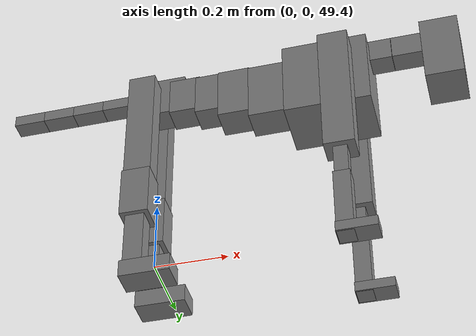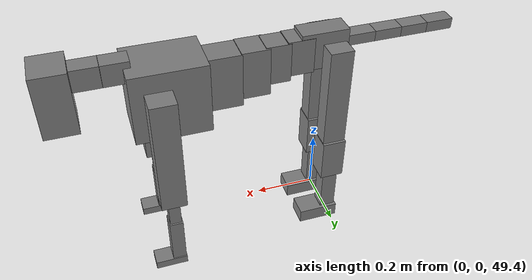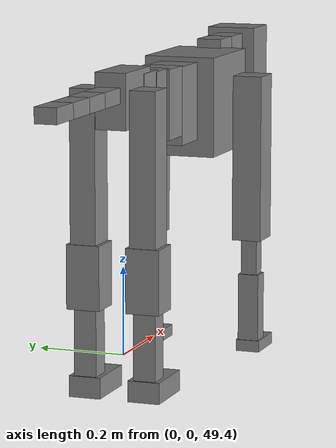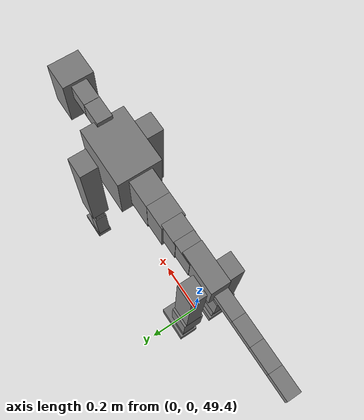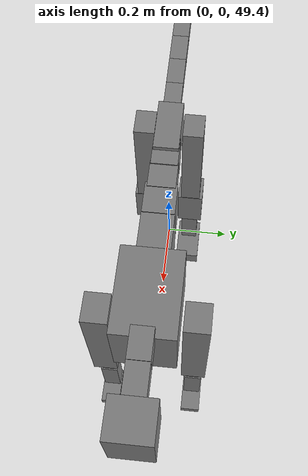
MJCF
<mujoco model="dog">

    <default>
        <joint armature="0.02" stiffness="1" damping="0.2" limited="true"/>
        <geom condim="3" friction="1 0.05 0.05" margin="0.01"/>
        <motor ctrllimited="true" ctrlrange="-1.0 1.0" forcelimited="true" gear="50"/>
    </default>

    <compiler inertiafromgeom="true" angle="radian"/>

    <option timestep="0.016" iterations="50" tolerance="1e-10" solver="Newton" jacobian="dense" cone="pyramidal"/>

    <size nconmax="20000" njmax="60000" nstack="5000000"/>
    <visual>
        <map force="0.1" zfar="30"/>
        <rgba haze="0.15 0.25 0.35 1"/>
        <quality shadowsize="2048"/>
        <global offwidth="800" offheight="800"/>
    </visual>

    <asset>
        <texture type="skybox" builtin="gradient" rgb1="0.3 0.5 0.7" rgb2="0 0 0" width="512" height="512"/>
        <texture name="texplane" type="2d" builtin="checker" rgb1=".2 .3 .4" rgb2=".1 0.15 0.2" width="512" height="512"
                 mark="cross" markrgb=".8 .8 .8"/>
        <texture name="texgeom" type="cube" builtin="flat" mark="cross" width="127" height="1278" rgb1="0.8 0.6 0.4"
                 rgb2="0.8 0.6 0.4" markrgb="1 1 1" random="0.01"/>

        <material name="matplane" reflectance="0.3" texture="texplane" texrepeat="1 1" texuniform="true"/>
        <material name="matgeom" texture="texgeom" texuniform="true" rgba="0.8 0.6 .4 1"/>
    </asset>

    <worldbody>
        <geom name="floor" pos="0 0 0" size="0 0 .25" type="plane" material="matplane" condim="3"/>

        <light directional="false" diffuse=".2 .2 .2" specular="0 0 0" pos="0 0 5" dir="0 0 -1" castshadow="false"/>
        <light mode="targetbodycom" target="torso" directional="false" diffuse=".8 .8 .8" specular="0.3 0.3 0.3"
               pos="0 0 4.0" dir="0 0 -1"/>

        <body name="root" pos="0 0 50">
            <freejoint name="root_1"/>
            <geom type="box" pos="0 0 -0.02" size="0.0774  0.0358  0.063" density="2030"/>

            <body name="spine1" pos="0.054 0 0">
                <joint name="spine1_y" axis="0 1 0" range="0 0.7" limited="true"/>
                <geom type="box" pos="0.02375 0 -0.03" size="0.04375  0.0375  0.05985" density="2030"/>

                <body name="spine2" pos="0.0612 0 0">
                    <joint name="spine2_y" axis="0 1 0" range="-0.15 0.15" limited="true"/>
                    <geom type="box" pos="0.03555  0  -0.04" size="0.04055  0.039  0.06615" density="2030"/>

                    <body name="spine3" pos="0.0730 0 0">
                        <joint name="spine3_y" axis="0 1 0" range="-0.15 0.15" limited="true"/>
                        <geom type="box" pos="0.03555  0  -0.057" size="0.04555  0.0445  0.081" density="2030"/>

                        <body name="spine4" pos="0.0780 0 0">
                            <joint name="spine4_y" axis="0 1 0" range="-0.15 0.15" limited="true"/>
                            <geom type="box" pos="0.05265  0  -0.07" size="0.05265  0.045  0.09135" density="2030"/>

                            <body name="torso" pos="0.1082 0 0">
                                <joint name="torso_y" axis="0 1 0" range="-0.15 0.15" limited="true"/>
                                <geom type="box" pos="0.11925  0  -0.085" size="0.11925  0.085  0.11745"
                                      density="2030"/>

                                <body name="neck1" pos="0.2160  0   0.0180">
                                    <joint name="neck1_y" axis="0 1 0" range="-1.2  -1" limited="true"/>
                                    <geom type="box" pos="0.0423  0  0" size="0.0423  0.03  0.036" density="2325"/>

                                    <body name="neck2" pos="0.0853  0  0">
                                        <joint name="neck2_y" axis="0 1 0" range="0.1  0" limited="true"/>
                                        <geom type="box" pos="0.0423  0  0" size="0.0423  0.03  0.036" density="2325"/>

                                        <body name="head" pos="0.0853  0  0">
                                            <joint name="head_y" axis="0 1 0" range="-0.3  -0.2" limited="true"/>
                                            <geom type="box" pos="0.0531  0  -0.055" size="0.0531  0.06  0.1044"
                                                  density="4030"/>

                                        </body>
                                    </body>
                                </body>

                                <body name="front_shoulder" pos="0.156  0   -0.0480">
                                    <joint name="front_shoulder_y" axis="0 1 0" range="-1 1.5" limited="true"/>
                                    <geom type="box" pos="0 0.13 -0.1718" size="0.0412  0.0352  0.1984" density="1158"/>
                                    <geom type="box" pos="0 -0.13 -0.1718" size="0.0412  0.0352  0.1984"
                                          density="1158"/>

                                    <body name="front_elbow" pos="0  0  -0.3435">
                                        <joint name="front_elbow_y" axis="0 1 0" range="-2 0" limited="true"/>
                                        <geom type="box" pos="0 0.13 -0.0632" size="0.0189  0.0193  0.0632"
                                              density="1081"/>
                                        <geom type="box" pos="0 -0.13 -0.0632" size="0.0189  0.0193  0.0632"
                                              density="1081"/>

                                        <body name="front_wrist" pos="0  0  -0.1265">
                                            <joint name="front_wrist_y" axis="0 1 0" range="-0.2 0" limited="true"/>
                                            <geom type="box" pos="0 0.13 -0.0817" size="0.0225  0.0250  0.0949"
                                                  density="1664"/>
                                            <geom type="box" pos="0 -0.13 -0.0817" size="0.0225  0.0250  0.0949"
                                                  density="1664"/>

                                            <body name="front_finger_end" pos="0  0  -0.1634">
                                                <joint name="front_finger_y" axis="0 1 0" range="-0.4 1"
                                                       limited="true"/>
                                                <geom type="box" pos="0.0289  0.13  0.0011"
                                                      size="0.0529  0.0289  0.0139" density="1515"/>
                                                <geom type="box" pos="0.0289  -0.13  0.0011"
                                                      size="0.0529  0.0289  0.0139" density="1515"/>

                                            </body>

                                        </body>
                                    </body>
                                </body>

                            </body>
                        </body>
                    </body>
                </body>
            </body>

            <body name="back_hip" pos="-0.03 0 -0.018">
                <joint name="back_hip_y" axis="0 1 0" range="-1.5 0.3" limited="true"/>
                <geom type="box" pos="0 0.07 -0.1704" size="0.0380  0.0298  0.1932" density="1154"/>
                <geom type="box" pos="0 -0.07 -0.1704" size="0.0380  0.0298  0.1932" density="1154"/>

                <body name="back_knee" pos="0  0  -0.3408">
                    <joint name="back_knee_y" axis="0 1 0" range="0 2.8" limited="true"/>
                    <geom type="box" pos="0 0.07 -0.0578" size="0.0393  0.0388  0.0733" density="1227"/>
                    <geom type="box" pos="0 -0.07 -0.0578" size="0.0393  0.0388  0.0733" density="1227"/>

                    <body name="back_ankle" pos="0  0  -0.1156">
                        <joint name="back_ankle_y" axis="0 1 0" range="-2.2 0" limited="true"/>
                        <geom type="box" pos="0 0.07 -0.0918" size="0.0261  0.0261  0.1030" density="1284"/>
                        <geom type="box" pos="0 -0.07 -0.0918" size="0.0261  0.0261  0.1030" density="1284"/>

                        <body name="back_toe_end" pos="0  0  -0.1836">
                            <joint name="back_toe_y" axis="0 1 0" range="-0.4 1" limited="true"/>
                            <geom type="box" pos="0.0370  0.07  -0.0091" size="0.0678  0.0370  0.0241" density="1515"/>
                            <geom type="box" pos="0.0370  -0.07  -0.0091" size="0.0678  0.0370  0.0241" density="1515"/>

                        </body>
                    </body>
                </body>
            </body>

            <body name="tail1" pos="-0.074 0 -0.006">
                <joint name="tail1_y" axis="0 1 0" range="-0.2 0.2" limited="true"/>
                <geom type="box" pos="-0.0536  0  0" size="0.045  0.025  0.0175" density="1587"/>

                <body name="tail2" pos="-0.09 0 0">
                    <joint name="tail2_y" axis="0 1 0" range="-0.2 0.2" limited="true"/>
                    <geom type="box" pos="-0.0536  0  0" size="0.045  0.025  0.0175" density="1587"/>

                    <body name="tail3" pos="-0.09 0 0">
                        <joint name="tail3_y" axis="0 1 0" range="-0.2 0.2" limited="true"/>
                        <geom type="box" pos="-0.0536  0  0" size="0.045  0.025  0.0175" density="1587"/>

                        <body name="tail4" pos="-0.09 0 0">
                            <joint name="tail4_y" axis="0 1 0" range="-0.2 0.2" limited="true"/>
                            <geom type="box" pos="-0.0536  0  0" size="0.045  0.025  0.0175" density="1587"/>

                        </body>
                    </body>
                </body>
            </body>
        </body>
    </worldbody>

    <actuator>
        <motor joint="spine1_y" forcerange="-150 150     "/>
        <motor joint="spine2_y" forcerange="-150 150     "/>
        <motor joint="spine3_y" forcerange="-150 150     "/>
        <motor joint="spine4_y" forcerange="-150 150     "/>
        <motor joint="torso_y" forcerange="-150 150     "/>
        <motor joint="neck1_y" forcerange="-100 100       "/>
        <motor joint="neck2_y" forcerange="-100 100       "/>
        <motor joint="head_y" forcerange="-150 150       "/>
        <motor joint="front_shoulder_y" forcerange="-138.77 195.96"/>
        <motor joint="front_elbow_y" forcerange="-132.93 107.38"/>
        <motor joint="front_wrist_y" forcerange="-83.34 117.03"/>
        <motor joint="front_finger_y" forcerange="-79.70 34.18"/>
        <motor joint="back_hip_y" forcerange="-270.51 326.38"/>
        <motor joint="back_knee_y" forcerange="-395.21 368.56"/>
        <motor joint="back_angle_y" forcerange="-127.29 190.47"/>
        <motor joint="back_toe_y" forcerange="-107.19 108.75"/>
        <motor joint="tail1_y" forcerange="-50 50     "/>
        <motor joint="tail2_y" forcerange="-50 50     "/>
        <motor joint="tail3_y" forcerange="-50 50     "/>
        <motor joint="tail4_y" forcerange="-50 50     "/>
    </actuator>
</mujoco>
